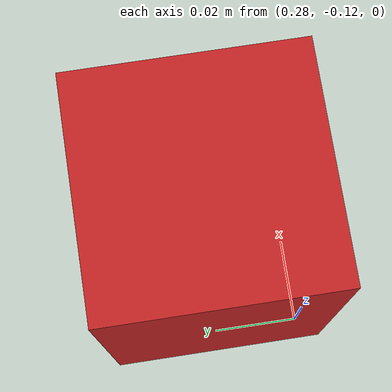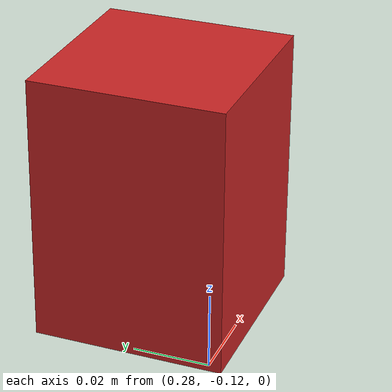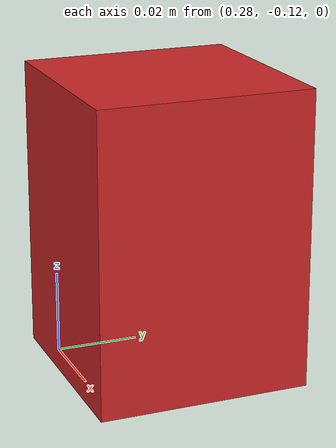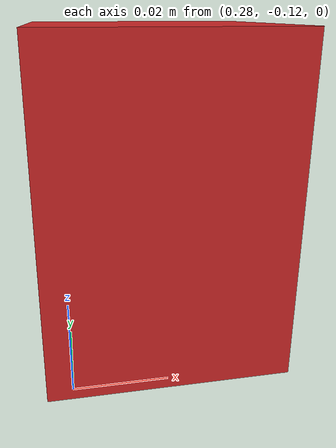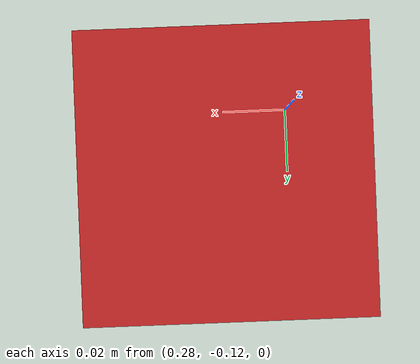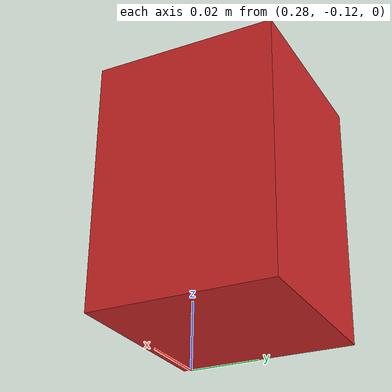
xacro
<?xml version="1.0"?>
<robot name="box">

<link name="base_link">
  <collision>
    <origin xyz="0.3 -0.1 0.037" rpy="0 0 0"/>
    <geometry>
      <box size="0.05 0.05 0.07" />
    </geometry>
  </collision>

  <visual>
    <origin xyz="0.3 -0.1 0.037" rpy="0 0 0"/>
    <geometry>
      <box size="0.05 0.05 0.07" />
    </geometry>
  </visual>

  <inertial>
    <origin xyz="0.3 -0.1 0.037" rpy="0 0 0" />
    <mass value="0.05" />
    <inertia
      ixx="3.0833e-5" ixy="0.0" ixz="0.0"
      iyy="3.0833e-5" iyz="0.0"
      izz="2.0833e-5" />
  </inertial>
  </link>

<gazebo reference="base_link">
  <material>Gazebo/Red</material>
    <mu1>8.0</mu1>
    <mu2>8.0</mu2>
</gazebo>

</robot>
